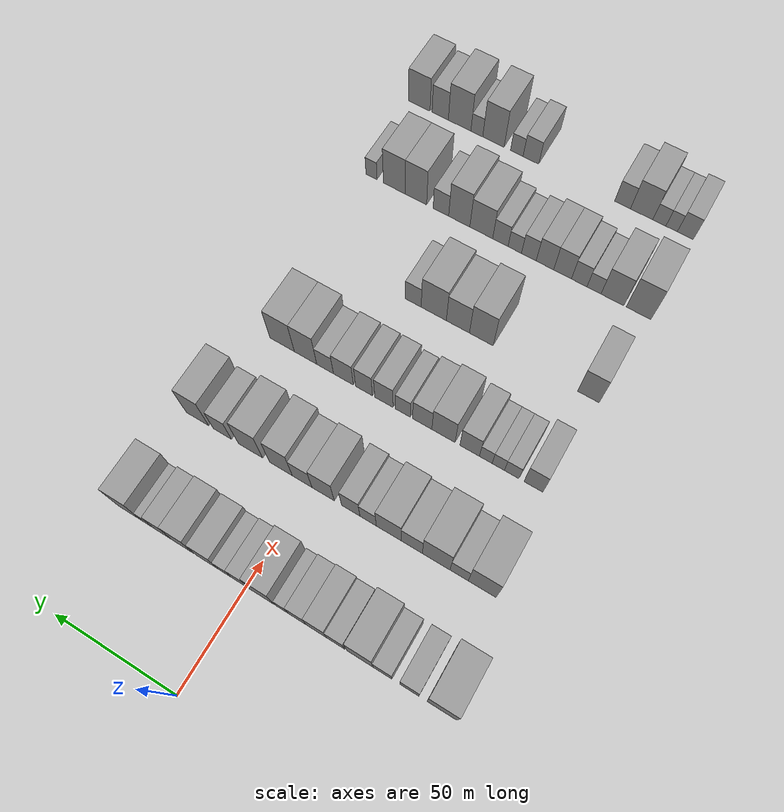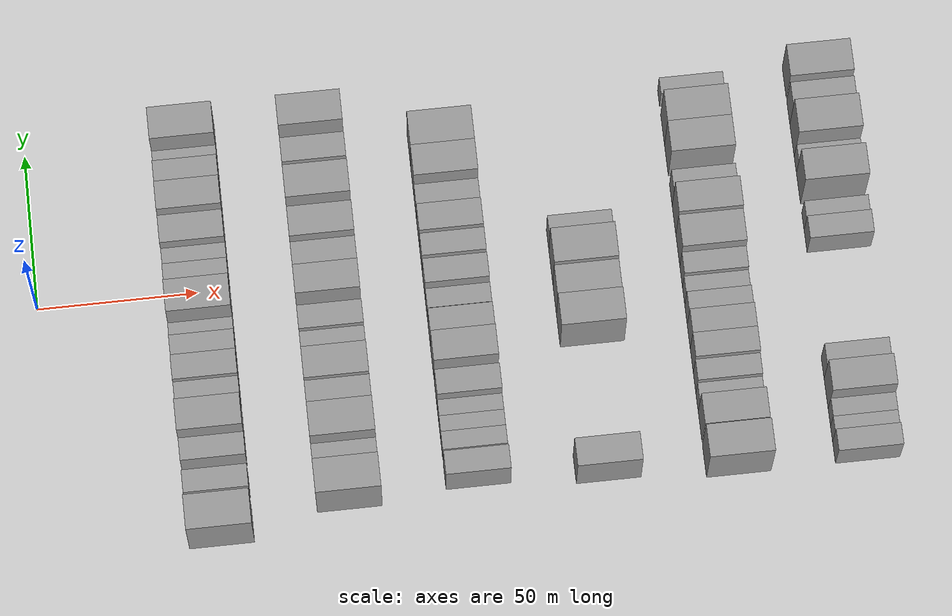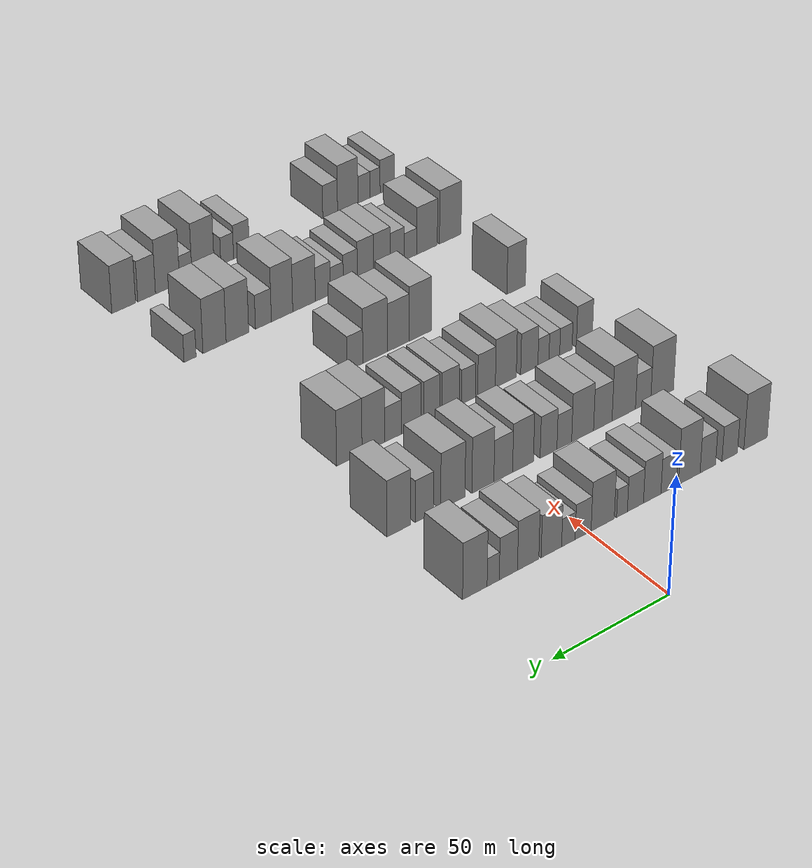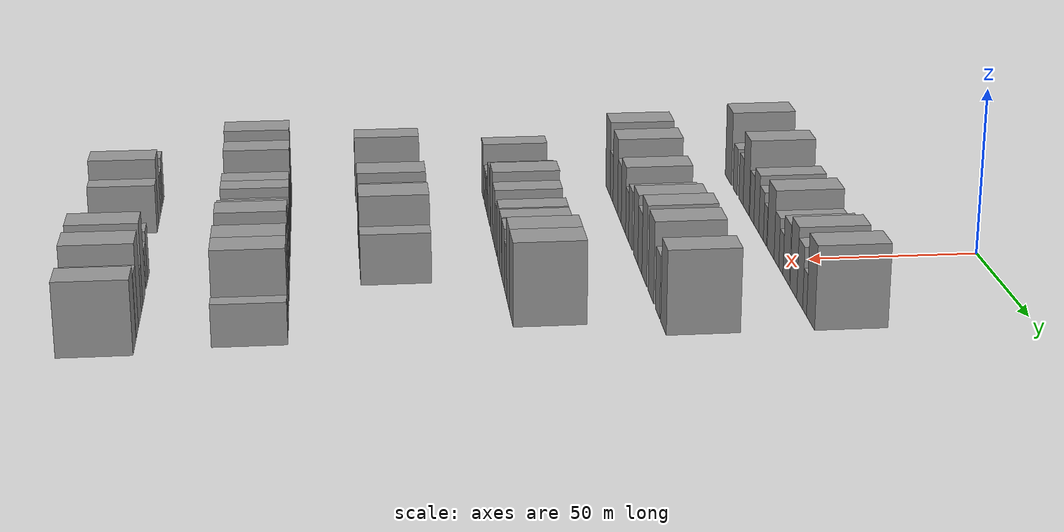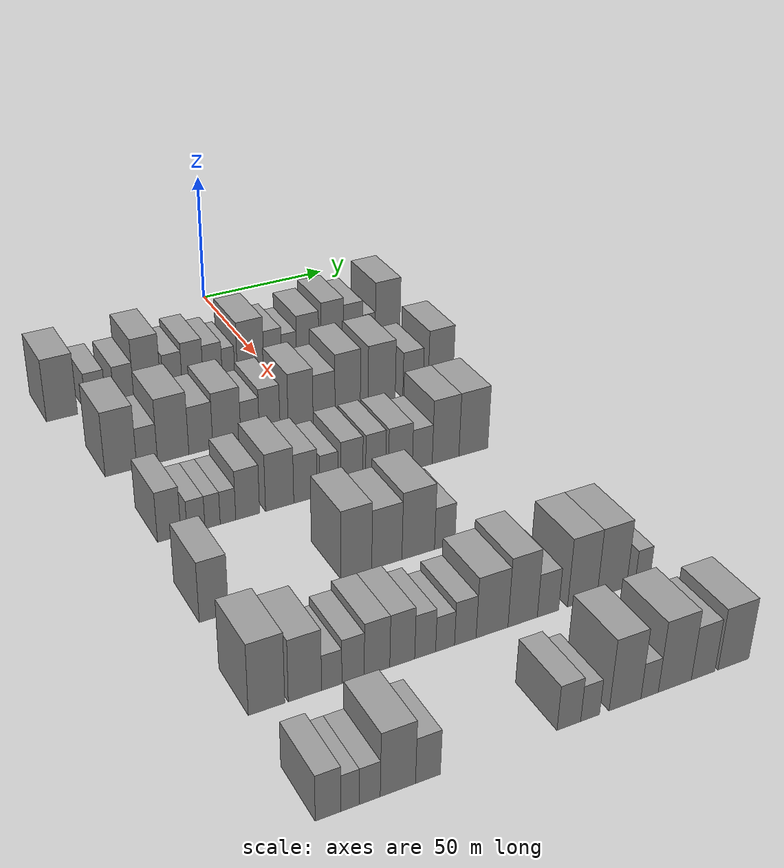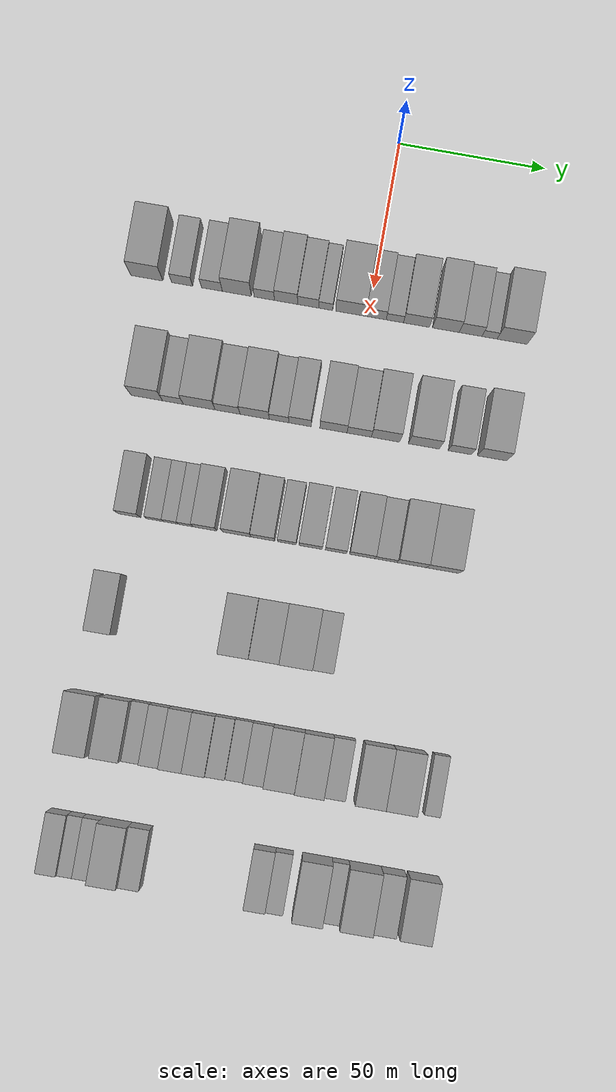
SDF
<sdf version="1.6">
 <world name="default">
  <model name="building_58">
   <static>1</static>
   <pose>50.0000 -75.8933 0 0.000000 0.000000 0.000000</pose>
   <link name="link">
    <pose>0 0 12.00 0 0 0</pose>
    <collision name="collision"><geometry><box><size>20.0000 10.9565 24.0000</size></box></geometry></collision>
    <visual name="visual">
     <cast_shadows>0</cast_shadows>
     <geometry><box><size>20.0000 10.9565 24.0000</size></box></geometry>
     <material>
      <script>
       <uri>model://grey_wall/materials/scripts</uri>
       <uri>model://grey_wall/materials/textures</uri>
       <name>vrc/grey_wall</name>
      </script>
     </material>
    </visual>
   </link>
  </model>
  <model name="building_59">
   <static>1</static>
   <pose>50.0000 -63.8269 0 0.000000 0.000000 0.000000</pose>
   <link name="link">
    <pose>0 0 7.50 0 0 0</pose>
    <collision name="collision"><geometry><box><size>20.0000 7.1763 15.0000</size></box></geometry></collision>
    <visual name="visual">
     <cast_shadows>0</cast_shadows>
     <geometry><box><size>20.0000 7.1763 15.0000</size></box></geometry>
     <material>
      <script>
       <uri>model://grey_wall/materials/scripts</uri>
       <uri>model://grey_wall/materials/textures</uri>
       <name>vrc/grey_wall</name>
      </script>
     </material>
    </visual>
   </link>
  </model>
  <model name="building_60">
   <static>1</static>
   <pose>50.0000 -53.6704 0 0.000000 0.000000 0.000000</pose>
   <link name="link">
    <pose>0 0 7.50 0 0 0</pose>
    <collision name="collision"><geometry><box><size>20.0000 7.1367 15.0000</size></box></geometry></collision>
    <visual name="visual">
     <cast_shadows>0</cast_shadows>
     <geometry><box><size>20.0000 7.1367 15.0000</size></box></geometry>
     <material>
      <script>
       <uri>model://grey_wall/materials/scripts</uri>
       <uri>model://grey_wall/materials/textures</uri>
       <name>vrc/grey_wall</name>
      </script>
     </material>
    </visual>
   </link>
  </model>
  <model name="building_61">
   <static>1</static>
   <pose>50.0000 -45.1412 0 0.000000 0.000000 0.000000</pose>
   <link name="link">
    <pose>0 0 12.00 0 0 0</pose>
    <collision name="collision"><geometry><box><size>20.0000 9.9217 24.0000</size></box></geometry></collision>
    <visual name="visual">
     <cast_shadows>0</cast_shadows>
     <geometry><box><size>20.0000 9.9217 24.0000</size></box></geometry>
     <material>
      <script>
       <uri>model://grey_wall/materials/scripts</uri>
       <uri>model://grey_wall/materials/textures</uri>
       <name>vrc/grey_wall</name>
      </script>
     </material>
    </visual>
   </link>
  </model>
  <model name="building_62">
   <static>1</static>
   <pose>50.0000 -35.7157 0 0.000000 0.000000 0.000000</pose>
   <link name="link">
    <pose>0 0 7.50 0 0 0</pose>
    <collision name="collision"><geometry><box><size>20.0000 6.9293 15.0000</size></box></geometry></collision>
    <visual name="visual">
     <cast_shadows>0</cast_shadows>
     <geometry><box><size>20.0000 6.9293 15.0000</size></box></geometry>
     <material>
      <script>
       <uri>model://grey_wall/materials/scripts</uri>
       <uri>model://grey_wall/materials/textures</uri>
       <name>vrc/grey_wall</name>
      </script>
     </material>
    </visual>
   </link>
  </model>
  <model name="building_63">
   <static>1</static>
   <pose>50.0000 -28.3047 0 0.000000 0.000000 0.000000</pose>
   <link name="link">
    <pose>0 0 9.00 0 0 0</pose>
    <collision name="collision"><geometry><box><size>20.0000 7.8925 18.0000</size></box></geometry></collision>
    <visual name="visual">
     <cast_shadows>0</cast_shadows>
     <geometry><box><size>20.0000 7.8925 18.0000</size></box></geometry>
     <material>
      <script>
       <uri>model://grey_wall/materials/scripts</uri>
       <uri>model://grey_wall/materials/textures</uri>
       <name>vrc/grey_wall</name>
      </script>
     </material>
    </visual>
   </link>
  </model>
  <model name="building_64">
   <static>1</static>
   <pose>50.0000 -20.7568 0 0.000000 0.000000 0.000000</pose>
   <link name="link">
    <pose>0 0 7.50 0 0 0</pose>
    <collision name="collision"><geometry><box><size>20.0000 7.2033 15.0000</size></box></geometry></collision>
    <visual name="visual">
     <cast_shadows>0</cast_shadows>
     <geometry><box><size>20.0000 7.2033 15.0000</size></box></geometry>
     <material>
      <script>
       <uri>model://grey_wall/materials/scripts</uri>
       <uri>model://grey_wall/materials/textures</uri>
       <name>vrc/grey_wall</name>
      </script>
     </material>
    </visual>
   </link>
  </model>
  <model name="building_65">
   <static>1</static>
   <pose>50.0000 -14.7513 0 0.000000 0.000000 0.000000</pose>
   <link name="link">
    <pose>0 0 6.00 0 0 0</pose>
    <collision name="collision"><geometry><box><size>20.0000 4.8078 12.0000</size></box></geometry></collision>
    <visual name="visual">
     <cast_shadows>0</cast_shadows>
     <geometry><box><size>20.0000 4.8078 12.0000</size></box></geometry>
     <material>
      <script>
       <uri>model://grey_wall/materials/scripts</uri>
       <uri>model://grey_wall/materials/textures</uri>
       <name>vrc/grey_wall</name>
      </script>
     </material>
    </visual>
   </link>
  </model>
  <model name="building_66">
   <static>1</static>
   <pose>50.0000 -6.2142 0 0.000000 0.000000 0.000000</pose>
   <link name="link">
    <pose>0 0 10.50 0 0 0</pose>
    <collision name="collision"><geometry><box><size>20.0000 10.2663 21.0000</size></box></geometry></collision>
    <visual name="visual">
     <cast_shadows>0</cast_shadows>
     <geometry><box><size>20.0000 10.2663 21.0000</size></box></geometry>
     <material>
      <script>
       <uri>model://grey_wall/materials/scripts</uri>
       <uri>model://grey_wall/materials/textures</uri>
       <name>vrc/grey_wall</name>
      </script>
     </material>
    </visual>
   </link>
  </model>
  <model name="building_67">
   <static>1</static>
   <pose>50.0000 2.4209 0 0.000000 0.000000 0.000000</pose>
   <link name="link">
    <pose>0 0 7.50 0 0 0</pose>
    <collision name="collision"><geometry><box><size>20.0000 7.0039 15.0000</size></box></geometry></collision>
    <visual name="visual">
     <cast_shadows>0</cast_shadows>
     <geometry><box><size>20.0000 7.0039 15.0000</size></box></geometry>
     <material>
      <script>
       <uri>model://grey_wall/materials/scripts</uri>
       <uri>model://grey_wall/materials/textures</uri>
       <name>vrc/grey_wall</name>
      </script>
     </material>
    </visual>
   </link>
  </model>
  <model name="building_68">
   <static>1</static>
   <pose>50.0000 8.8791 0 0.000000 0.000000 0.000000</pose>
   <link name="link">
    <pose>0 0 6.00 0 0 0</pose>
    <collision name="collision"><geometry><box><size>20.0000 5.9125 12.0000</size></box></geometry></collision>
    <visual name="visual">
     <cast_shadows>0</cast_shadows>
     <geometry><box><size>20.0000 5.9125 12.0000</size></box></geometry>
     <material>
      <script>
       <uri>model://grey_wall/materials/scripts</uri>
       <uri>model://grey_wall/materials/textures</uri>
       <name>vrc/grey_wall</name>
      </script>
     </material>
    </visual>
   </link>
  </model>
  <model name="building_69">
   <static>1</static>
   <pose>50.0000 16.2761 0 0.000000 0.000000 0.000000</pose>
   <link name="link">
    <pose>0 0 9.00 0 0 0</pose>
    <collision name="collision"><geometry><box><size>20.0000 8.8816 18.0000</size></box></geometry></collision>
    <visual name="visual">
     <cast_shadows>0</cast_shadows>
     <geometry><box><size>20.0000 8.8816 18.0000</size></box></geometry>
     <material>
      <script>
       <uri>model://grey_wall/materials/scripts</uri>
       <uri>model://grey_wall/materials/textures</uri>
       <name>vrc/grey_wall</name>
      </script>
     </material>
    </visual>
   </link>
  </model>
  <model name="building_70">
   <static>1</static>
   <pose>50.0000 26.3061 0 0.000000 0.000000 0.000000</pose>
   <link name="link">
    <pose>0 0 10.50 0 0 0</pose>
    <collision name="collision"><geometry><box><size>20.0000 9.1782 21.0000</size></box></geometry></collision>
    <visual name="visual">
     <cast_shadows>0</cast_shadows>
     <geometry><box><size>20.0000 9.1782 21.0000</size></box></geometry>
     <material>
      <script>
       <uri>model://grey_wall/materials/scripts</uri>
       <uri>model://grey_wall/materials/textures</uri>
       <name>vrc/grey_wall</name>
      </script>
     </material>
    </visual>
   </link>
  </model>
  <model name="building_71">
   <static>1</static>
   <pose>50.0000 34.7607 0 0.000000 0.000000 0.000000</pose>
   <link name="link">
    <pose>0 0 9.00 0 0 0</pose>
    <collision name="collision"><geometry><box><size>20.0000 7.7310 18.0000</size></box></geometry></collision>
    <visual name="visual">
     <cast_shadows>0</cast_shadows>
     <geometry><box><size>20.0000 7.7310 18.0000</size></box></geometry>
     <material>
      <script>
       <uri>model://grey_wall/materials/scripts</uri>
       <uri>model://grey_wall/materials/textures</uri>
       <name>vrc/grey_wall</name>
      </script>
     </material>
    </visual>
   </link>
  </model>
  <model name="building_72">
   <static>1</static>
   <pose>50.0000 41.2127 0 0.000000 0.000000 0.000000</pose>
   <link name="link">
    <pose>0 0 6.00 0 0 0</pose>
    <collision name="collision"><geometry><box><size>20.0000 5.1731 12.0000</size></box></geometry></collision>
    <visual name="visual">
     <cast_shadows>0</cast_shadows>
     <geometry><box><size>20.0000 5.1731 12.0000</size></box></geometry>
     <material>
      <script>
       <uri>model://grey_wall/materials/scripts</uri>
       <uri>model://grey_wall/materials/textures</uri>
       <name>vrc/grey_wall</name>
      </script>
     </material>
    </visual>
   </link>
  </model>
  <model name="building_73">
   <static>1</static>
   <pose>50.0000 48.9597 0 0.000000 0.000000 0.000000</pose>
   <link name="link">
    <pose>0 0 12.00 0 0 0</pose>
    <collision name="collision"><geometry><box><size>20.0000 10.3208 24.0000</size></box></geometry></collision>
    <visual name="visual">
     <cast_shadows>0</cast_shadows>
     <geometry><box><size>20.0000 10.3208 24.0000</size></box></geometry>
     <material>
      <script>
       <uri>model://grey_wall/materials/scripts</uri>
       <uri>model://grey_wall/materials/textures</uri>
       <name>vrc/grey_wall</name>
      </script>
     </material>
    </visual>
   </link>
  </model>
  <model name="building_201">
   <static>1</static>
   <pose>90.0000 -68.6933 0 0.000000 0.000000 0.000000</pose>
   <link name="link">
    <pose>0 0 12.00 0 0 0</pose>
    <collision name="collision"><geometry><box><size>20.0000 10.7074 24.0000</size></box></geometry></collision>
    <visual name="visual">
     <cast_shadows>0</cast_shadows>
     <geometry><box><size>20.0000 10.7074 24.0000</size></box></geometry>
     <material>
      <script>
       <uri>model://grey_wall/materials/scripts</uri>
       <uri>model://grey_wall/materials/textures</uri>
       <name>vrc/grey_wall</name>
      </script>
     </material>
    </visual>
   </link>
  </model>
  <model name="building_202">
   <static>1</static>
   <pose>90.0000 -59.7855 0 0.000000 0.000000 0.000000</pose>
   <link name="link">
    <pose>0 0 7.50 0 0 0</pose>
    <collision name="collision"><geometry><box><size>20.0000 7.1082 15.0000</size></box></geometry></collision>
    <visual name="visual">
     <cast_shadows>0</cast_shadows>
     <geometry><box><size>20.0000 7.1082 15.0000</size></box></geometry>
     <material>
      <script>
       <uri>model://grey_wall/materials/scripts</uri>
       <uri>model://grey_wall/materials/textures</uri>
       <name>vrc/grey_wall</name>
      </script>
     </material>
    </visual>
   </link>
  </model>
  <model name="building_203">
   <static>1</static>
   <pose>90.0000 -50.8051 0 0.000000 0.000000 0.000000</pose>
   <link name="link">
    <pose>0 0 12.00 0 0 0</pose>
    <collision name="collision"><geometry><box><size>20.0000 10.8525 24.0000</size></box></geometry></collision>
    <visual name="visual">
     <cast_shadows>0</cast_shadows>
     <geometry><box><size>20.0000 10.8525 24.0000</size></box></geometry>
     <material>
      <script>
       <uri>model://grey_wall/materials/scripts</uri>
       <uri>model://grey_wall/materials/textures</uri>
       <name>vrc/grey_wall</name>
      </script>
     </material>
    </visual>
   </link>
  </model>
  <model name="building_204">
   <static>1</static>
   <pose>90.0000 -41.1457 0 0.000000 0.000000 0.000000</pose>
   <link name="link">
    <pose>0 0 9.00 0 0 0</pose>
    <collision name="collision"><geometry><box><size>20.0000 8.4663 18.0000</size></box></geometry></collision>
    <visual name="visual">
     <cast_shadows>0</cast_shadows>
     <geometry><box><size>20.0000 8.4663 18.0000</size></box></geometry>
     <material>
      <script>
       <uri>model://grey_wall/materials/scripts</uri>
       <uri>model://grey_wall/materials/textures</uri>
       <name>vrc/grey_wall</name>
      </script>
     </material>
    </visual>
   </link>
  </model>
  <model name="building_205">
   <static>1</static>
   <pose>90.0000 -31.9233 0 0.000000 0.000000 0.000000</pose>
   <link name="link">
    <pose>0 0 10.50 0 0 0</pose>
    <collision name="collision"><geometry><box><size>20.0000 9.9786 21.0000</size></box></geometry></collision>
    <visual name="visual">
     <cast_shadows>0</cast_shadows>
     <geometry><box><size>20.0000 9.9786 21.0000</size></box></geometry>
     <material>
      <script>
       <uri>model://grey_wall/materials/scripts</uri>
       <uri>model://grey_wall/materials/textures</uri>
       <name>vrc/grey_wall</name>
      </script>
     </material>
    </visual>
   </link>
  </model>
  <model name="building_206">
   <static>1</static>
   <pose>90.0000 -23.6068 0 0.000000 0.000000 0.000000</pose>
   <link name="link">
    <pose>0 0 7.50 0 0 0</pose>
    <collision name="collision"><geometry><box><size>20.0000 6.6543 15.0000</size></box></geometry></collision>
    <visual name="visual">
     <cast_shadows>0</cast_shadows>
     <geometry><box><size>20.0000 6.6543 15.0000</size></box></geometry>
     <material>
      <script>
       <uri>model://grey_wall/materials/scripts</uri>
       <uri>model://grey_wall/materials/textures</uri>
       <name>vrc/grey_wall</name>
      </script>
     </material>
    </visual>
   </link>
  </model>
  <model name="building_207">
   <static>1</static>
   <pose>90.0000 -16.5090 0 0.000000 0.000000 0.000000</pose>
   <link name="link">
    <pose>0 0 9.00 0 0 0</pose>
    <collision name="collision"><geometry><box><size>20.0000 7.5413 18.0000</size></box></geometry></collision>
    <visual name="visual">
     <cast_shadows>0</cast_shadows>
     <geometry><box><size>20.0000 7.5413 18.0000</size></box></geometry>
     <material>
      <script>
       <uri>model://grey_wall/materials/scripts</uri>
       <uri>model://grey_wall/materials/textures</uri>
       <name>vrc/grey_wall</name>
      </script>
     </material>
    </visual>
   </link>
  </model>
  <model name="building_208">
   <static>1</static>
   <pose>90.0000 -5.1040 0 0.000000 0.000000 0.000000</pose>
   <link name="link">
    <pose>0 0 10.50 0 0 0</pose>
    <collision name="collision"><geometry><box><size>20.0000 9.2687 21.0000</size></box></geometry></collision>
    <visual name="visual">
     <cast_shadows>0</cast_shadows>
     <geometry><box><size>20.0000 9.2687 21.0000</size></box></geometry>
     <material>
      <script>
       <uri>model://grey_wall/materials/scripts</uri>
       <uri>model://grey_wall/materials/textures</uri>
       <name>vrc/grey_wall</name>
      </script>
     </material>
    </visual>
   </link>
  </model>
  <model name="building_209">
   <static>1</static>
   <pose>90.0000 3.6586 0 0.000000 0.000000 0.000000</pose>
   <link name="link">
    <pose>0 0 9.00 0 0 0</pose>
    <collision name="collision"><geometry><box><size>20.0000 8.2565 18.0000</size></box></geometry></collision>
    <visual name="visual">
     <cast_shadows>0</cast_shadows>
     <geometry><box><size>20.0000 8.2565 18.0000</size></box></geometry>
     <material>
      <script>
       <uri>model://grey_wall/materials/scripts</uri>
       <uri>model://grey_wall/materials/textures</uri>
       <name>vrc/grey_wall</name>
      </script>
     </material>
    </visual>
   </link>
  </model>
  <model name="building_210">
   <static>1</static>
   <pose>90.0000 12.6011 0 0.000000 0.000000 0.000000</pose>
   <link name="link">
    <pose>0 0 12.00 0 0 0</pose>
    <collision name="collision"><geometry><box><size>20.0000 9.6284 24.0000</size></box></geometry></collision>
    <visual name="visual">
     <cast_shadows>0</cast_shadows>
     <geometry><box><size>20.0000 9.6284 24.0000</size></box></geometry>
     <material>
      <script>
       <uri>model://grey_wall/materials/scripts</uri>
       <uri>model://grey_wall/materials/textures</uri>
       <name>vrc/grey_wall</name>
      </script>
     </material>
    </visual>
   </link>
  </model>
  <model name="building_211">
   <static>1</static>
   <pose>90.0000 25.6824 0 0.000000 0.000000 0.000000</pose>
   <link name="link">
    <pose>0 0 12.00 0 0 0</pose>
    <collision name="collision"><geometry><box><size>20.0000 10.5342 24.0000</size></box></geometry></collision>
    <visual name="visual">
     <cast_shadows>0</cast_shadows>
     <geometry><box><size>20.0000 10.5342 24.0000</size></box></geometry>
     <material>
      <script>
       <uri>model://grey_wall/materials/scripts</uri>
       <uri>model://grey_wall/materials/textures</uri>
       <name>vrc/grey_wall</name>
      </script>
     </material>
    </visual>
   </link>
  </model>
  <model name="building_212">
   <static>1</static>
   <pose>90.0000 37.9362 0 0.000000 0.000000 0.000000</pose>
   <link name="link">
    <pose>0 0 9.00 0 0 0</pose>
    <collision name="collision"><geometry><box><size>20.0000 7.9736 18.0000</size></box></geometry></collision>
    <visual name="visual">
     <cast_shadows>0</cast_shadows>
     <geometry><box><size>20.0000 7.9736 18.0000</size></box></geometry>
     <material>
      <script>
       <uri>model://grey_wall/materials/scripts</uri>
       <uri>model://grey_wall/materials/textures</uri>
       <name>vrc/grey_wall</name>
      </script>
     </material>
    </visual>
   </link>
  </model>
  <model name="building_213">
   <static>1</static>
   <pose>90.0000 48.9017 0 0.000000 0.000000 0.000000</pose>
   <link name="link">
    <pose>0 0 12.00 0 0 0</pose>
    <collision name="collision"><geometry><box><size>20.0000 9.9573 24.0000</size></box></geometry></collision>
    <visual name="visual">
     <cast_shadows>0</cast_shadows>
     <geometry><box><size>20.0000 9.9573 24.0000</size></box></geometry>
     <material>
      <script>
       <uri>model://grey_wall/materials/scripts</uri>
       <uri>model://grey_wall/materials/textures</uri>
       <name>vrc/grey_wall</name>
      </script>
     </material>
    </visual>
   </link>
  </model>
  <model name="building_338">
   <static>1</static>
   <pose>130.0000 -67.2926 0 0.000000 0.000000 0.000000</pose>
   <link name="link">
    <pose>0 0 9.00 0 0 0</pose>
    <collision name="collision"><geometry><box><size>20.0000 7.5001 18.0000</size></box></geometry></collision>
    <visual name="visual">
     <cast_shadows>0</cast_shadows>
     <geometry><box><size>20.0000 7.5001 18.0000</size></box></geometry>
     <material>
      <script>
       <uri>model://grey_wall/materials/scripts</uri>
       <uri>model://grey_wall/materials/textures</uri>
       <name>vrc/grey_wall</name>
      </script>
     </material>
    </visual>
   </link>
  </model>
  <model name="building_339">
   <static>1</static>
   <pose>130.0000 -58.6385 0 0.000000 0.000000 0.000000</pose>
   <link name="link">
    <pose>0 0 6.00 0 0 0</pose>
    <collision name="collision"><geometry><box><size>20.0000 5.8081 12.0000</size></box></geometry></collision>
    <visual name="visual">
     <cast_shadows>0</cast_shadows>
     <geometry><box><size>20.0000 5.8081 12.0000</size></box></geometry>
     <material>
      <script>
       <uri>model://grey_wall/materials/scripts</uri>
       <uri>model://grey_wall/materials/textures</uri>
       <name>vrc/grey_wall</name>
      </script>
     </material>
    </visual>
   </link>
  </model>
  <model name="building_340">
   <static>1</static>
   <pose>130.0000 -53.2350 0 0.000000 0.000000 0.000000</pose>
   <link name="link">
    <pose>0 0 6.00 0 0 0</pose>
    <collision name="collision"><geometry><box><size>20.0000 4.9991 12.0000</size></box></geometry></collision>
    <visual name="visual">
     <cast_shadows>0</cast_shadows>
     <geometry><box><size>20.0000 4.9991 12.0000</size></box></geometry>
     <material>
      <script>
       <uri>model://grey_wall/materials/scripts</uri>
       <uri>model://grey_wall/materials/textures</uri>
       <name>vrc/grey_wall</name>
      </script>
     </material>
    </visual>
   </link>
  </model>
  <model name="building_341">
   <static>1</static>
   <pose>130.0000 -48.1596 0 0.000000 0.000000 0.000000</pose>
   <link name="link">
    <pose>0 0 6.00 0 0 0</pose>
    <collision name="collision"><geometry><box><size>20.0000 5.1517 12.0000</size></box></geometry></collision>
    <visual name="visual">
     <cast_shadows>0</cast_shadows>
     <geometry><box><size>20.0000 5.1517 12.0000</size></box></geometry>
     <material>
      <script>
       <uri>model://grey_wall/materials/scripts</uri>
       <uri>model://grey_wall/materials/textures</uri>
       <name>vrc/grey_wall</name>
      </script>
     </material>
    </visual>
   </link>
  </model>
  <model name="building_342">
   <static>1</static>
   <pose>130.0000 -41.5993 0 0.000000 0.000000 0.000000</pose>
   <link name="link">
    <pose>0 0 9.00 0 0 0</pose>
    <collision name="collision"><geometry><box><size>20.0000 7.9688 18.0000</size></box></geometry></collision>
    <visual name="visual">
     <cast_shadows>0</cast_shadows>
     <geometry><box><size>20.0000 7.9688 18.0000</size></box></geometry>
     <material>
      <script>
       <uri>model://grey_wall/materials/scripts</uri>
       <uri>model://grey_wall/materials/textures</uri>
       <name>vrc/grey_wall</name>
      </script>
     </material>
    </visual>
   </link>
  </model>
  <model name="building_343">
   <static>1</static>
   <pose>130.0000 -30.8135 0 0.000000 0.000000 0.000000</pose>
   <link name="link">
    <pose>0 0 10.50 0 0 0</pose>
    <collision name="collision"><geometry><box><size>20.0000 9.6029 21.0000</size></box></geometry></collision>
    <visual name="visual">
     <cast_shadows>0</cast_shadows>
     <geometry><box><size>20.0000 9.6029 21.0000</size></box></geometry>
     <material>
      <script>
       <uri>model://grey_wall/materials/scripts</uri>
       <uri>model://grey_wall/materials/textures</uri>
       <name>vrc/grey_wall</name>
      </script>
     </material>
    </visual>
   </link>
  </model>
  <model name="building_344">
   <static>1</static>
   <pose>130.0000 -21.9859 0 0.000000 0.000000 0.000000</pose>
   <link name="link">
    <pose>0 0 9.00 0 0 0</pose>
    <collision name="collision"><geometry><box><size>20.0000 8.0523 18.0000</size></box></geometry></collision>
    <visual name="visual">
     <cast_shadows>0</cast_shadows>
     <geometry><box><size>20.0000 8.0523 18.0000</size></box></geometry>
     <material>
      <script>
       <uri>model://grey_wall/materials/scripts</uri>
       <uri>model://grey_wall/materials/textures</uri>
       <name>vrc/grey_wall</name>
      </script>
     </material>
    </visual>
   </link>
  </model>
  <model name="building_345">
   <static>1</static>
   <pose>130.0000 -13.8316 0 0.000000 0.000000 0.000000</pose>
   <link name="link">
    <pose>0 0 7.50 0 0 0</pose>
    <collision name="collision"><geometry><box><size>20.0000 6.2564 15.0000</size></box></geometry></collision>
    <visual name="visual">
     <cast_shadows>0</cast_shadows>
     <geometry><box><size>20.0000 6.2564 15.0000</size></box></geometry>
     <material>
      <script>
       <uri>model://grey_wall/materials/scripts</uri>
       <uri>model://grey_wall/materials/textures</uri>
       <name>vrc/grey_wall</name>
      </script>
     </material>
    </visual>
   </link>
  </model>
  <model name="building_346">
   <static>1</static>
   <pose>130.0000 -5.7993 0 0.000000 0.000000 0.000000</pose>
   <link name="link">
    <pose>0 0 9.00 0 0 0</pose>
    <collision name="collision"><geometry><box><size>20.0000 7.8081 18.0000</size></box></geometry></collision>
    <visual name="visual">
     <cast_shadows>0</cast_shadows>
     <geometry><box><size>20.0000 7.8081 18.0000</size></box></geometry>
     <material>
      <script>
       <uri>model://grey_wall/materials/scripts</uri>
       <uri>model://grey_wall/materials/textures</uri>
       <name>vrc/grey_wall</name>
      </script>
     </material>
    </visual>
   </link>
  </model>
  <model name="building_347">
   <static>1</static>
   <pose>130.0000 2.7097 0 0.000000 0.000000 0.000000</pose>
   <link name="link">
    <pose>0 0 9.00 0 0 0</pose>
    <collision name="collision"><geometry><box><size>20.0000 7.2098 18.0000</size></box></geometry></collision>
    <visual name="visual">
     <cast_shadows>0</cast_shadows>
     <geometry><box><size>20.0000 7.2098 18.0000</size></box></geometry>
     <material>
      <script>
       <uri>model://grey_wall/materials/scripts</uri>
       <uri>model://grey_wall/materials/textures</uri>
       <name>vrc/grey_wall</name>
      </script>
     </material>
    </visual>
   </link>
  </model>
  <model name="building_348">
   <static>1</static>
   <pose>130.0000 11.6475 0 0.000000 0.000000 0.000000</pose>
   <link name="link">
    <pose>0 0 9.00 0 0 0</pose>
    <collision name="collision"><geometry><box><size>20.0000 8.6658 18.0000</size></box></geometry></collision>
    <visual name="visual">
     <cast_shadows>0</cast_shadows>
     <geometry><box><size>20.0000 8.6658 18.0000</size></box></geometry>
     <material>
      <script>
       <uri>model://grey_wall/materials/scripts</uri>
       <uri>model://grey_wall/materials/textures</uri>
       <name>vrc/grey_wall</name>
      </script>
     </material>
    </visual>
   </link>
  </model>
  <model name="building_349">
   <static>1</static>
   <pose>130.0000 19.6461 0 0.000000 0.000000 0.000000</pose>
   <link name="link">
    <pose>0 0 7.50 0 0 0</pose>
    <collision name="collision"><geometry><box><size>20.0000 7.3313 15.0000</size></box></geometry></collision>
    <visual name="visual">
     <cast_shadows>0</cast_shadows>
     <geometry><box><size>20.0000 7.3313 15.0000</size></box></geometry>
     <material>
      <script>
       <uri>model://grey_wall/materials/scripts</uri>
       <uri>model://grey_wall/materials/textures</uri>
       <name>vrc/grey_wall</name>
      </script>
     </material>
    </visual>
   </link>
  </model>
  <model name="building_350">
   <static>1</static>
   <pose>130.0000 28.2954 0 0.000000 0.000000 0.000000</pose>
   <link name="link">
    <pose>0 0 12.00 0 0 0</pose>
    <collision name="collision"><geometry><box><size>20.0000 9.9672 24.0000</size></box></geometry></collision>
    <visual name="visual">
     <cast_shadows>0</cast_shadows>
     <geometry><box><size>20.0000 9.9672 24.0000</size></box></geometry>
     <material>
      <script>
       <uri>model://grey_wall/materials/scripts</uri>
       <uri>model://grey_wall/materials/textures</uri>
       <name>vrc/grey_wall</name>
      </script>
     </material>
    </visual>
   </link>
  </model>
  <model name="building_351">
   <static>1</static>
   <pose>130.0000 38.7564 0 0.000000 0.000000 0.000000</pose>
   <link name="link">
    <pose>0 0 12.00 0 0 0</pose>
    <collision name="collision"><geometry><box><size>20.0000 10.9549 24.0000</size></box></geometry></collision>
    <visual name="visual">
     <cast_shadows>0</cast_shadows>
     <geometry><box><size>20.0000 10.9549 24.0000</size></box></geometry>
     <material>
      <script>
       <uri>model://grey_wall/materials/scripts</uri>
       <uri>model://grey_wall/materials/textures</uri>
       <name>vrc/grey_wall</name>
      </script>
     </material>
    </visual>
   </link>
  </model>
  <model name="building_475">
   <static>1</static>
   <pose>170.0000 -69.0302 0 0.000000 0.000000 0.000000</pose>
   <link name="link">
    <pose>0 0 10.50 0 0 0</pose>
    <collision name="collision"><geometry><box><size>20.0000 8.8306 21.0000</size></box></geometry></collision>
    <visual name="visual">
     <cast_shadows>0</cast_shadows>
     <geometry><box><size>20.0000 8.8306 21.0000</size></box></geometry>
     <material>
      <script>
       <uri>model://grey_wall/materials/scripts</uri>
       <uri>model://grey_wall/materials/textures</uri>
       <name>vrc/grey_wall</name>
      </script>
     </material>
    </visual>
   </link>
  </model>
  <model name="building_476">
   <static>1</static>
   <pose>170.0000 -24.3343 0 0.000000 0.000000 0.000000</pose>
   <link name="link">
    <pose>0 0 12.00 0 0 0</pose>
    <collision name="collision"><geometry><box><size>20.0000 10.1871 24.0000</size></box></geometry></collision>
    <visual name="visual">
     <cast_shadows>0</cast_shadows>
     <geometry><box><size>20.0000 10.1871 24.0000</size></box></geometry>
     <material>
      <script>
       <uri>model://grey_wall/materials/scripts</uri>
       <uri>model://grey_wall/materials/textures</uri>
       <name>vrc/grey_wall</name>
      </script>
     </material>
    </visual>
   </link>
  </model>
  <model name="building_477">
   <static>1</static>
   <pose>170.0000 -14.2351 0 0.000000 0.000000 0.000000</pose>
   <link name="link">
    <pose>0 0 10.50 0 0 0</pose>
    <collision name="collision"><geometry><box><size>20.0000 10.0113 21.0000</size></box></geometry></collision>
    <visual name="visual">
     <cast_shadows>0</cast_shadows>
     <geometry><box><size>20.0000 10.0113 21.0000</size></box></geometry>
     <material>
      <script>
       <uri>model://grey_wall/materials/scripts</uri>
       <uri>model://grey_wall/materials/textures</uri>
       <name>vrc/grey_wall</name>
      </script>
     </material>
    </visual>
   </link>
  </model>
  <model name="building_478">
   <static>1</static>
   <pose>170.0000 -3.7107 0 0.000000 0.000000 0.000000</pose>
   <link name="link">
    <pose>0 0 12.00 0 0 0</pose>
    <collision name="collision"><geometry><box><size>20.0000 11.0374 24.0000</size></box></geometry></collision>
    <visual name="visual">
     <cast_shadows>0</cast_shadows>
     <geometry><box><size>20.0000 11.0374 24.0000</size></box></geometry>
     <material>
      <script>
       <uri>model://grey_wall/materials/scripts</uri>
       <uri>model://grey_wall/materials/textures</uri>
       <name>vrc/grey_wall</name>
      </script>
     </material>
    </visual>
   </link>
  </model>
  <model name="building_479">
   <static>1</static>
   <pose>170.0000 5.3019 0 0.000000 0.000000 0.000000</pose>
   <link name="link">
    <pose>0 0 7.50 0 0 0</pose>
    <collision name="collision"><geometry><box><size>20.0000 6.9877 15.0000</size></box></geometry></collision>
    <visual name="visual">
     <cast_shadows>0</cast_shadows>
     <geometry><box><size>20.0000 6.9877 15.0000</size></box></geometry>
     <material>
      <script>
       <uri>model://grey_wall/materials/scripts</uri>
       <uri>model://grey_wall/materials/textures</uri>
       <name>vrc/grey_wall</name>
      </script>
     </material>
    </visual>
   </link>
  </model>
  <model name="building_607">
   <static>1</static>
   <pose>210.0000 -70.5305 0 0.000000 0.000000 0.000000</pose>
   <link name="link">
    <pose>0 0 12.00 0 0 0</pose>
    <collision name="collision"><geometry><box><size>20.0000 10.3689 24.0000</size></box></geometry></collision>
    <visual name="visual">
     <cast_shadows>0</cast_shadows>
     <geometry><box><size>20.0000 10.3689 24.0000</size></box></geometry>
     <material>
      <script>
       <uri>model://grey_wall/materials/scripts</uri>
       <uri>model://grey_wall/materials/textures</uri>
       <name>vrc/grey_wall</name>
      </script>
     </material>
    </visual>
   </link>
  </model>
  <model name="building_608">
   <static>1</static>
   <pose>210.0000 -59.5267 0 0.000000 0.000000 0.000000</pose>
   <link name="link">
    <pose>0 0 10.50 0 0 0</pose>
    <collision name="collision"><geometry><box><size>20.0000 9.6385 21.0000</size></box></geometry></collision>
    <visual name="visual">
     <cast_shadows>0</cast_shadows>
     <geometry><box><size>20.0000 9.6385 21.0000</size></box></geometry>
     <material>
      <script>
       <uri>model://grey_wall/materials/scripts</uri>
       <uri>model://grey_wall/materials/textures</uri>
       <name>vrc/grey_wall</name>
      </script>
     </material>
    </visual>
   </link>
  </model>
  <model name="building_609">
   <static>1</static>
   <pose>210.0000 -51.7162 0 0.000000 0.000000 0.000000</pose>
   <link name="link">
    <pose>0 0 6.00 0 0 0</pose>
    <collision name="collision"><geometry><box><size>20.0000 5.9825 12.0000</size></box></geometry></collision>
    <visual name="visual">
     <cast_shadows>0</cast_shadows>
     <geometry><box><size>20.0000 5.9825 12.0000</size></box></geometry>
     <material>
      <script>
       <uri>model://grey_wall/materials/scripts</uri>
       <uri>model://grey_wall/materials/textures</uri>
       <name>vrc/grey_wall</name>
      </script>
     </material>
    </visual>
   </link>
  </model>
  <model name="building_610">
   <static>1</static>
   <pose>210.0000 -45.3934 0 0.000000 0.000000 0.000000</pose>
   <link name="link">
    <pose>0 0 7.50 0 0 0</pose>
    <collision name="collision"><geometry><box><size>20.0000 6.6630 15.0000</size></box></geometry></collision>
    <visual name="visual">
     <cast_shadows>0</cast_shadows>
     <geometry><box><size>20.0000 6.6630 15.0000</size></box></geometry>
     <material>
      <script>
       <uri>model://grey_wall/materials/scripts</uri>
       <uri>model://grey_wall/materials/textures</uri>
       <name>vrc/grey_wall</name>
      </script>
     </material>
    </visual>
   </link>
  </model>
  <model name="building_611">
   <static>1</static>
   <pose>210.0000 -38.2008 0 0.000000 0.000000 0.000000</pose>
   <link name="link">
    <pose>0 0 9.00 0 0 0</pose>
    <collision name="collision"><geometry><box><size>20.0000 7.7222 18.0000</size></box></geometry></collision>
    <visual name="visual">
     <cast_shadows>0</cast_shadows>
     <geometry><box><size>20.0000 7.7222 18.0000</size></box></geometry>
     <material>
      <script>
       <uri>model://grey_wall/materials/scripts</uri>
       <uri>model://grey_wall/materials/textures</uri>
       <name>vrc/grey_wall</name>
      </script>
     </material>
    </visual>
   </link>
  </model>
  <model name="building_612">
   <static>1</static>
   <pose>210.0000 -30.5262 0 0.000000 0.000000 0.000000</pose>
   <link name="link">
    <pose>0 0 9.00 0 0 0</pose>
    <collision name="collision"><geometry><box><size>20.0000 7.6270 18.0000</size></box></geometry></collision>
    <visual name="visual">
     <cast_shadows>0</cast_shadows>
     <geometry><box><size>20.0000 7.6270 18.0000</size></box></geometry>
     <material>
      <script>
       <uri>model://grey_wall/materials/scripts</uri>
       <uri>model://grey_wall/materials/textures</uri>
       <name>vrc/grey_wall</name>
      </script>
     </material>
    </visual>
   </link>
  </model>
  <model name="building_613">
   <static>1</static>
   <pose>210.0000 -23.4687 0 0.000000 0.000000 0.000000</pose>
   <link name="link">
    <pose>0 0 7.50 0 0 0</pose>
    <collision name="collision"><geometry><box><size>20.0000 6.4880 15.0000</size></box></geometry></collision>
    <visual name="visual">
     <cast_shadows>0</cast_shadows>
     <geometry><box><size>20.0000 6.4880 15.0000</size></box></geometry>
     <material>
      <script>
       <uri>model://grey_wall/materials/scripts</uri>
       <uri>model://grey_wall/materials/textures</uri>
       <name>vrc/grey_wall</name>
      </script>
     </material>
    </visual>
   </link>
  </model>
  <model name="building_614">
   <static>1</static>
   <pose>210.0000 -17.2523 0 0.000000 0.000000 0.000000</pose>
   <link name="link">
    <pose>0 0 6.00 0 0 0</pose>
    <collision name="collision"><geometry><box><size>20.0000 5.9448 12.0000</size></box></geometry></collision>
    <visual name="visual">
     <cast_shadows>0</cast_shadows>
     <geometry><box><size>20.0000 5.9448 12.0000</size></box></geometry>
     <material>
      <script>
       <uri>model://grey_wall/materials/scripts</uri>
       <uri>model://grey_wall/materials/textures</uri>
       <name>vrc/grey_wall</name>
      </script>
     </material>
    </visual>
   </link>
  </model>
  <model name="building_615">
   <static>1</static>
   <pose>210.0000 -10.8561 0 0.000000 0.000000 0.000000</pose>
   <link name="link">
    <pose>0 0 7.50 0 0 0</pose>
    <collision name="collision"><geometry><box><size>20.0000 6.8477 15.0000</size></box></geometry></collision>
    <visual name="visual">
     <cast_shadows>0</cast_shadows>
     <geometry><box><size>20.0000 6.8477 15.0000</size></box></geometry>
     <material>
      <script>
       <uri>model://grey_wall/materials/scripts</uri>
       <uri>model://grey_wall/materials/textures</uri>
       <name>vrc/grey_wall</name>
      </script>
     </material>
    </visual>
   </link>
  </model>
  <model name="building_616">
   <static>1</static>
   <pose>210.0000 -2.2864 0 0.000000 0.000000 0.000000</pose>
   <link name="link">
    <pose>0 0 10.50 0 0 0</pose>
    <collision name="collision"><geometry><box><size>20.0000 10.2918 21.0000</size></box></geometry></collision>
    <visual name="visual">
     <cast_shadows>0</cast_shadows>
     <geometry><box><size>20.0000 10.2918 21.0000</size></box></geometry>
     <material>
      <script>
       <uri>model://grey_wall/materials/scripts</uri>
       <uri>model://grey_wall/materials/textures</uri>
       <name>vrc/grey_wall</name>
      </script>
     </material>
    </visual>
   </link>
  </model>
  <model name="building_617">
   <static>1</static>
   <pose>210.0000 7.6790 0 0.000000 0.000000 0.000000</pose>
   <link name="link">
    <pose>0 0 12.00 0 0 0</pose>
    <collision name="collision"><geometry><box><size>20.0000 9.6389 24.0000</size></box></geometry></collision>
    <visual name="visual">
     <cast_shadows>0</cast_shadows>
     <geometry><box><size>20.0000 9.6389 24.0000</size></box></geometry>
     <material>
      <script>
       <uri>model://grey_wall/materials/scripts</uri>
       <uri>model://grey_wall/materials/textures</uri>
       <name>vrc/grey_wall</name>
      </script>
     </material>
    </visual>
   </link>
  </model>
  <model name="building_618">
   <static>1</static>
   <pose>210.0000 16.0559 0 0.000000 0.000000 0.000000</pose>
   <link name="link">
    <pose>0 0 7.50 0 0 0</pose>
    <collision name="collision"><geometry><box><size>20.0000 7.1148 15.0000</size></box></geometry></collision>
    <visual name="visual">
     <cast_shadows>0</cast_shadows>
     <geometry><box><size>20.0000 7.1148 15.0000</size></box></geometry>
     <material>
      <script>
       <uri>model://grey_wall/materials/scripts</uri>
       <uri>model://grey_wall/materials/textures</uri>
       <name>vrc/grey_wall</name>
      </script>
     </material>
    </visual>
   </link>
  </model>
  <model name="building_619">
   <static>1</static>
   <pose>210.0000 27.6237 0 0.000000 0.000000 0.000000</pose>
   <link name="link">
    <pose>0 0 12.00 0 0 0</pose>
    <collision name="collision"><geometry><box><size>20.0000 10.0210 24.0000</size></box></geometry></collision>
    <visual name="visual">
     <cast_shadows>0</cast_shadows>
     <geometry><box><size>20.0000 10.0210 24.0000</size></box></geometry>
     <material>
      <script>
       <uri>model://grey_wall/materials/scripts</uri>
       <uri>model://grey_wall/materials/textures</uri>
       <name>vrc/grey_wall</name>
      </script>
     </material>
    </visual>
   </link>
  </model>
  <model name="building_620">
   <static>1</static>
   <pose>210.0000 37.7310 0 0.000000 0.000000 0.000000</pose>
   <link name="link">
    <pose>0 0 12.00 0 0 0</pose>
    <collision name="collision"><geometry><box><size>20.0000 10.1935 24.0000</size></box></geometry></collision>
    <visual name="visual">
     <cast_shadows>0</cast_shadows>
     <geometry><box><size>20.0000 10.1935 24.0000</size></box></geometry>
     <material>
      <script>
       <uri>model://grey_wall/materials/scripts</uri>
       <uri>model://grey_wall/materials/textures</uri>
       <name>vrc/grey_wall</name>
      </script>
     </material>
    </visual>
   </link>
  </model>
  <model name="building_621">
   <static>1</static>
   <pose>210.0000 48.4473 0 0.000000 0.000000 0.000000</pose>
   <link name="link">
    <pose>0 0 6.00 0 0 0</pose>
    <collision name="collision"><geometry><box><size>20.0000 5.2392 12.0000</size></box></geometry></collision>
    <visual name="visual">
     <cast_shadows>0</cast_shadows>
     <geometry><box><size>20.0000 5.2392 12.0000</size></box></geometry>
     <material>
      <script>
       <uri>model://grey_wall/materials/scripts</uri>
       <uri>model://grey_wall/materials/textures</uri>
       <name>vrc/grey_wall</name>
      </script>
     </material>
    </visual>
   </link>
  </model>
  <model name="building_749">
   <static>1</static>
   <pose>250.0000 -72.0773 0 0.000000 0.000000 0.000000</pose>
   <link name="link">
    <pose>0 0 7.50 0 0 0</pose>
    <collision name="collision"><geometry><box><size>20.0000 6.8540 15.0000</size></box></geometry></collision>
    <visual name="visual">
     <cast_shadows>0</cast_shadows>
     <geometry><box><size>20.0000 6.8540 15.0000</size></box></geometry>
     <material>
      <script>
       <uri>model://grey_wall/materials/scripts</uri>
       <uri>model://grey_wall/materials/textures</uri>
       <name>vrc/grey_wall</name>
      </script>
     </material>
    </visual>
   </link>
  </model>
  <model name="building_750">
   <static>1</static>
   <pose>250.0000 -66.1777 0 0.000000 0.000000 0.000000</pose>
   <link name="link">
    <pose>0 0 6.00 0 0 0</pose>
    <collision name="collision"><geometry><box><size>20.0000 4.9451 12.0000</size></box></geometry></collision>
    <visual name="visual">
     <cast_shadows>0</cast_shadows>
     <geometry><box><size>20.0000 4.9451 12.0000</size></box></geometry>
     <material>
      <script>
       <uri>model://grey_wall/materials/scripts</uri>
       <uri>model://grey_wall/materials/textures</uri>
       <name>vrc/grey_wall</name>
      </script>
     </material>
    </visual>
   </link>
  </model>
  <model name="building_751">
   <static>1</static>
   <pose>250.0000 -60.8622 0 0.000000 0.000000 0.000000</pose>
   <link name="link">
    <pose>0 0 6.00 0 0 0</pose>
    <collision name="collision"><geometry><box><size>20.0000 5.6860 12.0000</size></box></geometry></collision>
    <visual name="visual">
     <cast_shadows>0</cast_shadows>
     <geometry><box><size>20.0000 5.6860 12.0000</size></box></geometry>
     <material>
      <script>
       <uri>model://grey_wall/materials/scripts</uri>
       <uri>model://grey_wall/materials/textures</uri>
       <name>vrc/grey_wall</name>
      </script>
     </material>
    </visual>
   </link>
  </model>
  <model name="building_752">
   <static>1</static>
   <pose>250.0000 -53.1428 0 0.000000 0.000000 0.000000</pose>
   <link name="link">
    <pose>0 0 10.50 0 0 0</pose>
    <collision name="collision"><geometry><box><size>20.0000 9.7528 21.0000</size></box></geometry></collision>
    <visual name="visual">
     <cast_shadows>0</cast_shadows>
     <geometry><box><size>20.0000 9.7528 21.0000</size></box></geometry>
     <material>
      <script>
       <uri>model://grey_wall/materials/scripts</uri>
       <uri>model://grey_wall/materials/textures</uri>
       <name>vrc/grey_wall</name>
      </script>
     </material>
    </visual>
   </link>
  </model>
  <model name="building_753">
   <static>1</static>
   <pose>250.0000 -44.7740 0 0.000000 0.000000 0.000000</pose>
   <link name="link">
    <pose>0 0 7.50 0 0 0</pose>
    <collision name="collision"><geometry><box><size>20.0000 6.9848 15.0000</size></box></geometry></collision>
    <visual name="visual">
     <cast_shadows>0</cast_shadows>
     <geometry><box><size>20.0000 6.9848 15.0000</size></box></geometry>
     <material>
      <script>
       <uri>model://grey_wall/materials/scripts</uri>
       <uri>model://grey_wall/materials/textures</uri>
       <name>vrc/grey_wall</name>
      </script>
     </material>
    </visual>
   </link>
  </model>
  <model name="building_754">
   <static>1</static>
   <pose>250.0000 -3.4432 0 0.000000 0.000000 0.000000</pose>
   <link name="link">
    <pose>0 0 7.50 0 0 0</pose>
    <collision name="collision"><geometry><box><size>20.0000 7.2256 15.0000</size></box></geometry></collision>
    <visual name="visual">
     <cast_shadows>0</cast_shadows>
     <geometry><box><size>20.0000 7.2256 15.0000</size></box></geometry>
     <material>
      <script>
       <uri>model://grey_wall/materials/scripts</uri>
       <uri>model://grey_wall/materials/textures</uri>
       <name>vrc/grey_wall</name>
      </script>
     </material>
    </visual>
   </link>
  </model>
  <model name="building_755">
   <static>1</static>
   <pose>250.0000 3.0851 0 0.000000 0.000000 0.000000</pose>
   <link name="link">
    <pose>0 0 6.00 0 0 0</pose>
    <collision name="collision"><geometry><box><size>20.0000 5.8309 12.0000</size></box></geometry></collision>
    <visual name="visual">
     <cast_shadows>0</cast_shadows>
     <geometry><box><size>20.0000 5.8309 12.0000</size></box></geometry>
     <material>
      <script>
       <uri>model://grey_wall/materials/scripts</uri>
       <uri>model://grey_wall/materials/textures</uri>
       <name>vrc/grey_wall</name>
      </script>
     </material>
    </visual>
   </link>
  </model>
  <model name="building_756">
   <static>1</static>
   <pose>250.0000 14.0137 0 0.000000 0.000000 0.000000</pose>
   <link name="link">
    <pose>0 0 12.00 0 0 0</pose>
    <collision name="collision"><geometry><box><size>20.0000 10.0263 24.0000</size></box></geometry></collision>
    <visual name="visual">
     <cast_shadows>0</cast_shadows>
     <geometry><box><size>20.0000 10.0263 24.0000</size></box></geometry>
     <material>
      <script>
       <uri>model://grey_wall/materials/scripts</uri>
       <uri>model://grey_wall/materials/textures</uri>
       <name>vrc/grey_wall</name>
      </script>
     </material>
    </visual>
   </link>
  </model>
  <model name="building_757">
   <static>1</static>
   <pose>250.0000 21.8210 0 0.000000 0.000000 0.000000</pose>
   <link name="link">
    <pose>0 0 6.00 0 0 0</pose>
    <collision name="collision"><geometry><box><size>20.0000 5.5884 12.0000</size></box></geometry></collision>
    <visual name="visual">
     <cast_shadows>0</cast_shadows>
     <geometry><box><size>20.0000 5.5884 12.0000</size></box></geometry>
     <material>
      <script>
       <uri>model://grey_wall/materials/scripts</uri>
       <uri>model://grey_wall/materials/textures</uri>
       <name>vrc/grey_wall</name>
      </script>
     </material>
    </visual>
   </link>
  </model>
  <model name="building_758">
   <static>1</static>
   <pose>250.0000 29.9983 0 0.000000 0.000000 0.000000</pose>
   <link name="link">
    <pose>0 0 12.00 0 0 0</pose>
    <collision name="collision"><geometry><box><size>20.0000 10.7662 24.0000</size></box></geometry></collision>
    <visual name="visual">
     <cast_shadows>0</cast_shadows>
     <geometry><box><size>20.0000 10.7662 24.0000</size></box></geometry>
     <material>
      <script>
       <uri>model://grey_wall/materials/scripts</uri>
       <uri>model://grey_wall/materials/textures</uri>
       <name>vrc/grey_wall</name>
      </script>
     </material>
    </visual>
   </link>
  </model>
  <model name="building_759">
   <static>1</static>
   <pose>250.0000 39.2956 0 0.000000 0.000000 0.000000</pose>
   <link name="link">
    <pose>0 0 9.00 0 0 0</pose>
    <collision name="collision"><geometry><box><size>20.0000 7.8283 18.0000</size></box></geometry></collision>
    <visual name="visual">
     <cast_shadows>0</cast_shadows>
     <geometry><box><size>20.0000 7.8283 18.0000</size></box></geometry>
     <material>
      <script>
       <uri>model://grey_wall/materials/scripts</uri>
       <uri>model://grey_wall/materials/textures</uri>
       <name>vrc/grey_wall</name>
      </script>
     </material>
    </visual>
   </link>
  </model>
  <model name="building_760">
   <static>1</static>
   <pose>250.0000 49.4112 0 0.000000 0.000000 0.000000</pose>
   <link name="link">
    <pose>0 0 10.50 0 0 0</pose>
    <collision name="collision"><geometry><box><size>20.0000 10.4029 21.0000</size></box></geometry></collision>
    <visual name="visual">
     <cast_shadows>0</cast_shadows>
     <geometry><box><size>20.0000 10.4029 21.0000</size></box></geometry>
     <material>
      <script>
       <uri>model://grey_wall/materials/scripts</uri>
       <uri>model://grey_wall/materials/textures</uri>
       <name>vrc/grey_wall</name>
      </script>
     </material>
    </visual>
   </link>
  </model>
 </world>
</sdf>
